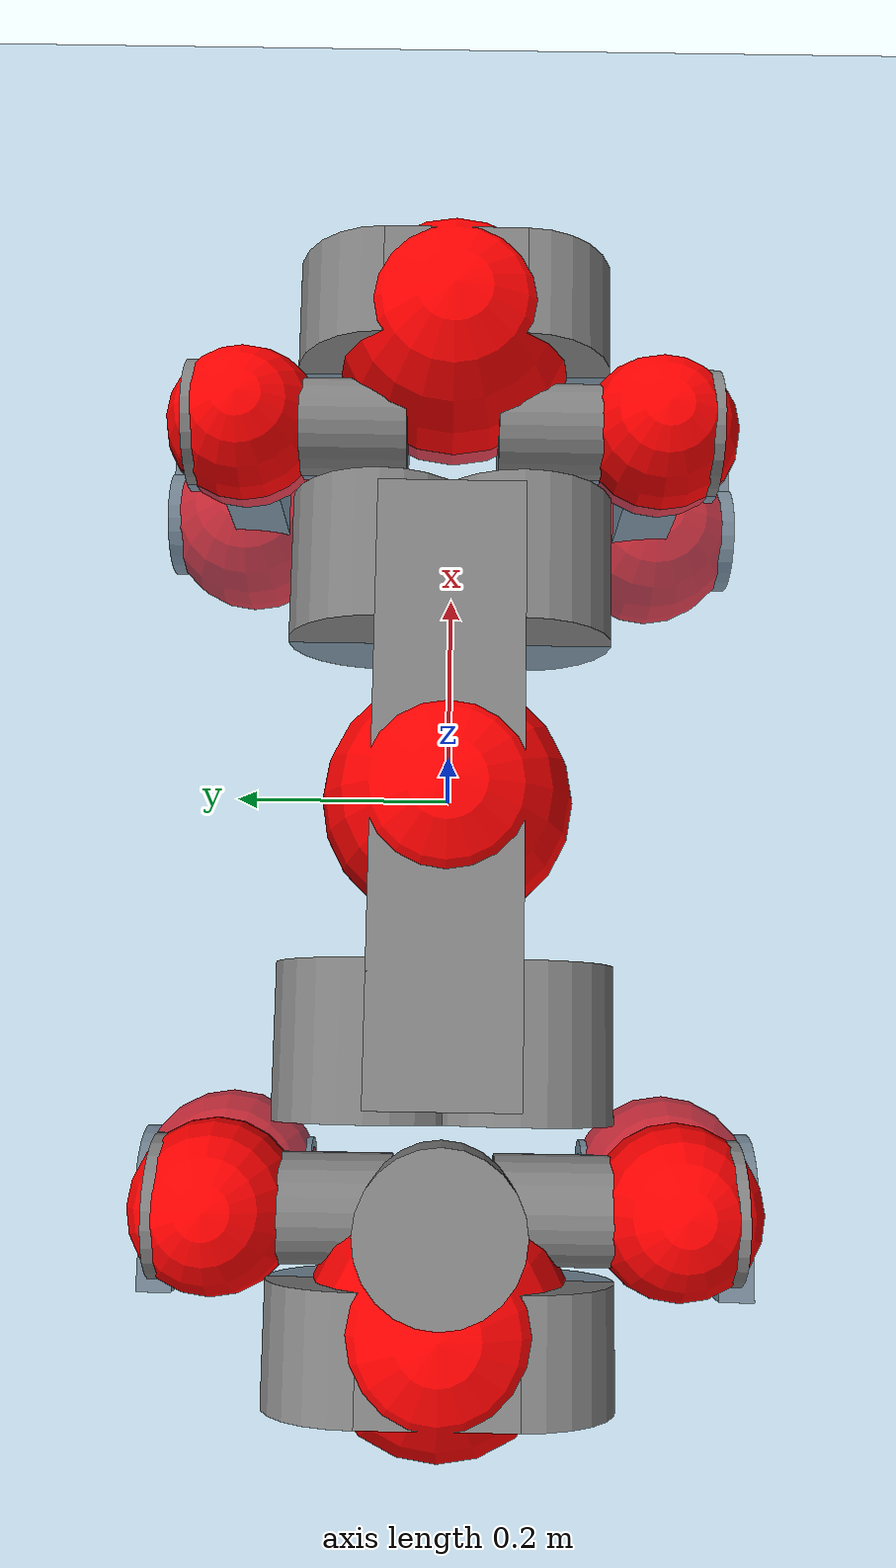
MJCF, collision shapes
<mujoco model="anymal_c">
  <compiler angle="radian" assetdir="assets" balanceinertia="true" inertiafromgeom="false"/>

  <option timestep="0.005" density="1.2" viscosity="2e-05"/>

  <size nkey="1"/>

  <visual>
    <quality shadowsize="8192"/>
    <map shadowclip="0.5"/>
  </visual>

  <default>
    <default class="/">
      <material specular="0" shininess="0.25"/>
      <geom contype="0" conaffinity="0" group="1" solref="-1000 -80"/>
      <site size="0.01 0.005 0.005" group="5"/>
      <general forcelimited="true" forcerange="-80 80" biastype="affine" gainprm="80" biasprm="0 -80 -2"/>
      <default class="anymal_c">
        <joint armature="0.01" damping="0.01" frictionloss="0.1"/>
        <default class="visual">
          <geom type="mesh" group="2"/>
          <default class="visual_zflip"/>
        </default>
        <default class="collision">
          <geom type="cylinder" group="3"/>
          <default class="foot">
            <geom size="0.03 0 0" type="sphere" condim="6" priority="1" friction="0.8 0.02 0.01" solimp="0.015 1 0.03"/>
          </default>
        </default>
      </default>
      <default class="reward_collision_sphere">
        <geom group="5" rgba="1 0 0 1"/>
      </default>
    </default>
  </default>

  <asset>
    <texture type="skybox" colorspace="auto" name="//unnamed_texture_0" builtin="gradient" rgb1="0.95 0.95 0.95" rgb2="0.95 0.95 0.95" width="100" height="600"/>
    <texture type="2d" colorspace="auto" name="texplane" builtin="checker" rgb1="0.345 0.575 0.748" rgb2="0.345 0.575 0.748" markrgb="1 1 1" width="512" height="512"/>
    <texture type="2d" colorspace="linear" name="base" file="base.png"/>
    <texture type="2d" colorspace="linear" name="top_shell" file="top_shell.png"/>
    <texture type="2d" colorspace="linear" name="bottom_shell" file="bottom_shell.png"/>
    <texture type="2d" colorspace="linear" name="remote" file="remote.png"/>
    <texture type="2d" colorspace="linear" name="hatch" file="hatch.png"/>
    <texture type="2d" colorspace="linear" name="handle" file="handle.png"/>
    <texture type="2d" colorspace="linear" name="face" file="face.png"/>
    <texture type="2d" colorspace="linear" name="battery" file="battery.png"/>
    <texture type="2d" colorspace="linear" name="lidar_cage" file="lidar_cage.png"/>
    <texture type="2d" colorspace="linear" name="depth_camera" file="depth_camera.png"/>
    <texture type="2d" colorspace="linear" name="wide_angle_camera" file="wide_angle_camera.png"/>
    <texture type="2d" colorspace="linear" name="lidar" file="lidar.png"/>
    <texture type="2d" colorspace="linear" name="drive" file="drive.png"/>
    <texture type="2d" colorspace="linear" name="hip_l" file="hip_l.png"/>
    <texture type="2d" colorspace="linear" name="shank_l" file="shank_l.png"/>
    <texture type="2d" colorspace="linear" name="foot" file="foot.png"/>
    <texture type="2d" colorspace="linear" name="thigh" file="thigh.png"/>
    <texture type="2d" colorspace="linear" name="shank_r" file="shank_r.png"/>
    <texture type="2d" colorspace="linear" name="hip_r" file="hip_r.png"/>
    <material name="MatPlane" class="/" texture="texplane" texuniform="true" texrepeat="2 2" specular="0.9" shininess="0.5"/>
    <material name="black_plastic" class="/" rgba="0.007 0.007 0.007 1"/>
    <material name="green" class="/" rgba="0.052 0.178 0.033 1"/>
    <material name="red" class="/" rgba="0.178 0.006 0.005 1"/>
    <material name="yellow" class="/" rgba="0.178 0.119 0.006 1"/>
    <material name="lwl" class="/" rgba="0.8 0.8 0.8 1"/>
    <material name="base" class="/" texture="base"/>
    <material name="top_shell" class="/" texture="top_shell"/>
    <material name="bottom_shell" class="/" texture="bottom_shell"/>
    <material name="hip_l" class="/" texture="hip_l"/>
    <material name="thigh" class="/" texture="thigh"/>
    <material name="shank_l" class="/" texture="shank_l"/>
    <material name="foot" class="/" texture="foot"/>
    <material name="hip_r" class="/" texture="hip_r"/>
    <material name="shank" class="/" texture="shank_r"/>
    <material name="hatch" class="/" texture="hatch"/>
    <material name="remote" class="/" texture="remote"/>
    <material name="handle" class="/" texture="handle"/>
    <material name="face" class="/" texture="face"/>
    <material name="depth_camera" class="/" texture="depth_camera"/>
    <material name="wide_angle_camera" class="/" texture="wide_angle_camera"/>
    <material name="battery" class="/" texture="battery"/>
    <material name="lidar_cage" class="/" texture="lidar_cage"/>
    <material name="lidar" class="/" texture="lidar"/>
    <material name="drive" class="/" texture="drive"/>
    <mesh name="base_0" class="/" file="base_0.obj"/>
    <mesh name="base_1" class="/" file="base_1.obj"/>
    <mesh name="base_2" class="/" file="base_2.obj"/>
    <mesh name="base_3" class="/" file="base_3.obj"/>
    <mesh name="base_4" class="/" file="base_4.obj"/>
    <mesh name="base_5" class="/" file="base_5.obj"/>
    <mesh name="top_shell" class="/" file="top_shell.obj"/>
    <mesh name="bottom_shell" class="/" file="bottom_shell.obj"/>
    <mesh name="remote" class="/" file="remote.obj"/>
    <mesh name="handle" class="/" file="handle.obj"/>
    <mesh name="face" class="/" file="face.obj"/>
    <mesh name="wide_angle_camera" class="/" file="wide_angle_camera.obj"/>
    <mesh name="depth_camera" class="/" file="depth_camera.obj"/>
    <mesh name="battery" class="/" file="battery.obj"/>
    <mesh name="lidar_cage" class="/" file="lidar_cage.obj"/>
    <mesh name="lidar" class="/" file="lidar.obj"/>
    <mesh name="drive" class="/" file="drive.obj"/>
    <mesh name="hip_l" class="/" file="hip_l.obj"/>
    <mesh name="thigh" class="/" file="thigh.obj"/>
    <mesh name="shank_l" class="/" file="shank_l.obj"/>
    <mesh name="foot" class="/" file="foot.obj"/>
    <mesh name="hip_r" class="/" file="hip_r.obj"/>
    <mesh name="hatch" class="/" file="hatch.obj"/>
    <mesh name="shank_r" class="/" file="shank_r.obj"/>
  </asset>

  <worldbody>
    <geom name="floor" class="/" size="100 100 0.125" type="plane" group="0" material="MatPlane"/>
    <light name="toplight_shadow" class="/" pos="0 0 5" dir="0.0990148 0.0990148 -0.990148" type="directional" ambient="0.04 0.04 0.04" diffuse="0.55 0.55 0.55" specular="0.12 0.12 0.12"/>
    <light name="toplight_fill" class="/" pos="0 0 5" dir="0.0990148 0.0990148 -0.990148" type="directional" castshadow="false" ambient="0.04 0.04 0.04" diffuse="0.3 0.3 0.3" specular="0.08 0.08 0.08"/>
    <body name="trunk" childclass="anymal_c" pos="0.00152631 0.000847432 -0.00219755" quat="0.999999 0.000802388 0.000698364 -0.00018538">
      <inertial pos="0.00064284 0.00165757 0.046763" quat="0.500395 0.497924 0.499503 0.502169" mass="18.5113" diaginertia="0.810203 0.542839 0.178658"/>
      <joint name="//unnamed_joint_0" type="free" armature="0" damping="0" frictionloss="0"/>
      <geom name="//unnamed_geom_1" class="visual" material="green" mesh="base_0"/>
      <geom name="//unnamed_geom_2" class="visual" material="yellow" mesh="base_1"/>
      <geom name="//unnamed_geom_3" class="visual" material="red" mesh="base_2"/>
      <geom name="//unnamed_geom_4" class="visual" material="black_plastic" mesh="base_3"/>
      <geom name="//unnamed_geom_5" class="visual" material="lwl" mesh="base_4"/>
      <geom name="//unnamed_geom_6" class="visual" material="base" mesh="base_5"/>
      <geom name="trunk_1" class="collision" size="0.287998 0.0695169 0.0893788" type="box"/>
      <geom name="trunk_2" class="collision" size="0.0893788 0.0719996" pos="0.227937 0.0680914 0" quat="0.707107 0 0.707107 0"/>
      <geom name="trunk_3" class="collision" size="0.0893788 0.0719996" pos="-0.227937 0.0680914 0" quat="0.707107 0 0.707107 0"/>
      <geom name="trunk_4" class="collision" size="0.0893788 0.0719996" pos="0.227937 -0.0680914 0" quat="0.707107 0 0.707107 0"/>
      <geom name="trunk_5" class="collision" size="0.0893788 0.0719996" pos="-0.227937 -0.0680914 0" quat="0.707107 0 0.707107 0"/>
      <geom name="//unnamed_geom_12" class="visual" material="top_shell" mesh="top_shell"/>
      <geom name="//unnamed_geom_13" class="visual" material="bottom_shell" mesh="bottom_shell"/>
      <geom name="//unnamed_geom_14" class="visual" material="remote" mesh="remote"/>
      <geom name="//unnamed_geom_15" class="visual" material="handle" mesh="handle"/>
      <geom name="//unnamed_geom_16" class="visual" pos="0.434391 0 0" quat="1 0 0 0" material="face" mesh="face"/>
      <geom name="trunk_6" class="collision" size="0.0546204 0.0695169 0.0893788" pos="0.49203 0 0" type="box"/>
      <geom name="//unnamed_geom_18" class="collision" size="0.0893788 0.0546204" pos="0.49203 0.0680914 0" quat="0.707107 0 0.707107 0"/>
      <geom name="//unnamed_geom_19" class="collision" size="0.0893788 0.0546204" pos="0.49203 -0.0680914 0" quat="0.707107 0 0.707107 0"/>
      <geom name="//unnamed_geom_20" class="visual" pos="0.4838 0 -0.0273108" quat="0.965926 0 0.258819 0" material="depth_camera" mesh="depth_camera"/>
      <geom name="//unnamed_geom_21" class="visual" pos="0.537618 0 0.0143498" material="wide_angle_camera" mesh="wide_angle_camera"/>
      <geom name="//unnamed_geom_22" class="visual_zflip" pos="-0.434391 0 0" quat="0 0 0 1" material="face" mesh="face"/>
      <geom name="trunk_7" class="collision" size="0.0546204 0.0695169 0.0893788" pos="-0.49203 0 0" quat="0 0 0 1" type="box"/>
      <geom name="//unnamed_geom_24" class="collision" size="0.0893788 0.0546204" pos="-0.49203 -0.0680914 0" quat="0 -0.707107 0 0.707107"/>
      <geom name="//unnamed_geom_25" class="collision" size="0.0893788 0.0546204" pos="-0.49203 0.0680914 0" quat="0 -0.707107 0 0.707107"/>
      <geom name="//unnamed_geom_26" class="visual" pos="-0.4838 0 -0.0273108" quat="0 -0.258819 0 0.965926" material="depth_camera" mesh="depth_camera"/>
      <geom name="//unnamed_geom_27" class="visual_zflip" pos="-0.537618 0 0.0143498" quat="0 0 0 1" material="wide_angle_camera" mesh="wide_angle_camera"/>
      <geom name="//unnamed_geom_28" class="visual" material="battery" mesh="battery"/>
      <geom name="//unnamed_geom_29" class="visual" pos="0 0.0733841 0.0285261" quat="0.683013 -0.183013 0.183013 0.683013" material="depth_camera" mesh="depth_camera"/>
      <geom name="//unnamed_geom_30" class="visual" pos="0 -0.0733841 0.0285261" quat="0.683013 0.183013 0.183013 -0.683013" material="depth_camera" mesh="depth_camera"/>
      <geom name="//unnamed_geom_31" class="visual" pos="-0.381468 0 0.0704551" quat="1 0 0 0" material="lidar_cage" mesh="lidar_cage"/>
      <geom name="trunk_8" class="collision" size="0.0695169 0.0595859" pos="-0.381468 0 0.127969"/>
      <geom name="//unnamed_geom_33" class="visual" pos="-0.381468 -2.95649e-05 0.136309" quat="0.707107 0 0 -0.707107" material="lidar" mesh="lidar"/>
      <geom name="//unnamed_geom_34" class="visual" pos="0.314292 0.101159 2.443e-10" quat="0.258819 0.965926 0 0" material="drive" mesh="drive"/>
      <geom name="//unnamed_geom_35" class="visual" pos="0.314292 -0.101159 -2.443e-10" quat="0.258819 -0.965926 0 0" material="drive" mesh="drive"/>
      <geom name="//unnamed_geom_36" class="visual" pos="-0.314292 0.101159 -2.443e-10" quat="0 0 0.965926 -0.258819" material="drive" mesh="drive"/>
      <geom name="//unnamed_geom_37" class="visual" pos="-0.314292 -0.101159 2.443e-10" quat="0 0 -0.965926 -0.258819" material="drive" mesh="drive"/>
      <geom name="//unnamed_geom_38" class="visual" pos="0.121567 0 0.0699758" quat="1 0 0 0" material="hatch" mesh="hatch"/>
      <geom name="//unnamed_geom_39" class="reward_collision_sphere" size="0.119172"/>
      <geom name="//unnamed_geom_40" class="reward_collision_sphere" size="0.119172" pos="0.471594 0 0"/>
      <geom name="//unnamed_geom_41" class="reward_collision_sphere" size="0.119172" pos="-0.471594 0 0"/>
      <site name="imu" pos="0.265568 0.0208186 0.0559528" size="0.00993098"/>
      <camera name="track" pos="0 -1.94547 0" quat="0.707107 0.707107 0 0" mode="trackcom"/>
      <camera name="ego_camera" pos="0.471594 0 -0.0383429" quat="-0.5 -0.5 0.5 0.5"/>
      <body name="LF_HIP" pos="0.314856 0.101738 0.000925144" quat="0.258779 0.965936 -9.33937e-05 -0.00101091">
        <inertial pos="0.0593795 -0.0173659 -0.00674237" quat="-0.129316 0.706282 -0.134318 0.682936" mass="2.64098" diaginertia="0.00751885 0.00440078 0.00266957"/>
        <joint name="LF_HAA" pos="0 0 0" axis="0.999955 -0.00922909 0.00236924" range="-0.684109 0.510253" armature="0.00994834" damping="0.02224" frictionloss="0.0984345"/>
        <geom name="//unnamed_geom_42" class="visual" pos="0 1.43711e-05 -2.36044e-06" quat="0.258819 -0.965926 0 0" material="hip_l" mesh="hip_l"/>
        <geom name="//unnamed_geom_43" class="visual" pos="0.0627745 -0.0750688 -0.0432362" quat="0.183013 -0.683013 0.683013 0.183013" material="drive" mesh="drive"/>
        <geom name="//unnamed_geom_44" class="collision" size="0.0496549 0.0695169" pos="0.0627745 -0.0116337 -0.00661894" quat="-0.353553 -0.612372 0.612372 -0.353553"/>
        <body name="LF_THIGH" pos="0.0655958 -0.0715115 -0.03719" quat="0.182537 -0.683061 0.682769 0.184212">
          <inertial pos="0.0353771 -0.00269051 -0.237742" quat="0.993135 -0.0044481 -0.0809792 0.0842991" mass="2.92843" diaginertia="0.0379436 0.024834 0.00332016"/>
          <joint name="LF_HFE" pos="0 0 0" axis="0.999991 -0.000541501 0.00418295" range="-3.10913 3.14307" armature="0.00913727" damping="0.0141175" frictionloss="0.0933037"/>
          <geom name="//unnamed_geom_45" class="visual" pos="0.00149724 2.3593e-06 0" quat="0.707107 0 0 -0.707107" material="thigh" mesh="thigh"/>
          <geom name="//unnamed_geom_46" class="collision" size="0.0645514 0.0397239" pos="0.0419195 0 0" quat="0.5 0.5 -0.5 -0.5"/>
          <geom name="//unnamed_geom_47" class="collision" size="0.0372412 0.0297929 0.140339" pos="0.0314396 0 -0.13546" quat="0.707107 0 0 -0.707107" type="box"/>
          <geom name="//unnamed_geom_48" class="visual" pos="0.105113 0 -0.273193" quat="1 0 0 0" material="drive" mesh="drive"/>
          <geom name="//unnamed_geom_49" class="collision" size="0.0496549 0.0695169" pos="0.031754 0 -0.273193" quat="0.707107 0 0.707107 0"/>
          <geom name="//unnamed_geom_50" class="reward_collision_sphere" size="0.0794479" pos="0.0261997 0 0"/>
          <body name="LF_SHANK" pos="0.104491 -0.00257227 -0.273051" quat="0.999999 -0.000759546 -0.000433579 -0.0011749">
            <inertial pos="0.00303983 -0.0600369 -0.0745292" quat="0.992653 -0.119334 -0.00505333 -0.0193263" mass="0.575279" diaginertia="0.0126258 0.00846535 0.000929519"/>
            <joint name="LF_KFE" pos="0 0 0" axis="0.999968 0.002881 -0.0074391" stiffness="0.00367546" range="-3.18477 3.12716" armature="0.0110307" damping="0" frictionloss="0.111462"/>
            <geom name="//unnamed_geom_51" class="visual" pos="0.000488218 0.0026032 0" quat="0.707107 0 0 -0.707107" material="shank_l" mesh="shank_l"/>
            <geom name="LF_kfe_act" class="collision" size="0.0595859 0.019862" pos="0.0209598 0 0" quat="0.5 0.5 -0.5 -0.5"/>
            <geom name="//unnamed_geom_53" class="collision" size="0.0571022 0.0335171 0.0188689" pos="0.0209598 -0.0559313 0" quat="0.5 0.5 -0.5 -0.5" type="box"/>
            <geom name="//unnamed_geom_54" class="visual" pos="0.0136761 -0.0847131 -0.323969" quat="0.382683 0 0 -0.92388" material="foot" mesh="foot"/>
            <geom name="LF_calf" class="collision" size="0.0173792 0.140277" pos="0.0136762 -0.085552 -0.161984" quat="0.707107 0 0 -0.707107"/>
            <geom name="LF_foot" class="foot" size="0.0296839" pos="0.0136762 -0.085552 -0.302401" quat="0.707107 0 0 -0.707107"/>
            <geom name="//unnamed_geom_57" class="reward_collision_sphere" size="0.0993098" pos="-0.0523994 0 0"/>
            <geom name="//unnamed_geom_58" class="reward_collision_sphere" size="0.0496549" pos="0.0136762 -0.085552 -0.302401"/>
            <site name="LF_foot" class="foot" pos="0.0136762 -0.085552 -0.302401" quat="0.707107 0 0 -0.707107" size="0.00993098"/>
          </body>
        </body>
      </body>
      <body name="RF_HIP" pos="0.313911 -0.100894 -0.00193138" quat="0.258573 -0.96599 0.00125615 0.000815934">
        <inertial pos="0.0619932 0.0128068 -0.00799024" quat="0.139837 0.671686 0.136837 0.714534" mass="2.70122" diaginertia="0.00691313 0.00413882 0.00248633"/>
        <joint name="RF_HAA" pos="0 0 0" axis="0.999946 0.00117471 0.0102924" range="-0.472114 0.719142" armature="0.0102471" damping="0.00550465" frictionloss="0.0864315"/>
        <geom name="//unnamed_geom_59" class="visual" pos="0 -1.4371e-05 -2.36043e-06" quat="0.258819 0.965926 0 0" material="hip_r" mesh="hip_r"/>
        <geom name="//unnamed_geom_60" class="visual" pos="0.0627745 0.0750688 -0.0432362" quat="0.183013 0.683013 0.683013 -0.183013" material="drive" mesh="drive"/>
        <geom name="//unnamed_geom_61" class="collision" size="0.0496549 0.0695169" pos="0.0627745 0.0116337 -0.00661894" quat="-0.353553 0.612372 0.612372 0.353553"/>
        <body name="RF_THIGH" pos="0.0632081 0.0688104 -0.0396845" quat="0.182657 0.683396 0.682848 -0.182552">
          <inertial pos="0.0350196 -0.00283995 -0.234174" quat="0.991347 -0.013697 -0.089718 0.0948425" mass="3.02235" diaginertia="0.0376231 0.024974 0.00339883"/>
          <joint name="RF_HFE" pos="0 0 0" axis="0.999993 0.000433992 0.00371481" range="-3.12228 3.19422" armature="0.00988357" damping="0.0121229" frictionloss="0.109274"/>
          <geom name="//unnamed_geom_62" class="visual" pos="0.00149724 2.3593e-06 0" quat="0.707107 0 0 -0.707107" material="thigh" mesh="thigh"/>
          <geom name="//unnamed_geom_63" class="collision" size="0.0645514 0.0397239" pos="0.0419195 0 0" quat="0.5 0.5 0.5 0.5"/>
          <geom name="//unnamed_geom_64" class="collision" size="0.0372412 0.0297929 0.140339" pos="0.0314396 0 -0.13546" quat="0.707107 0 0 0.707107" type="box"/>
          <geom name="//unnamed_geom_65" class="visual" pos="0.105113 0 -0.273193" quat="1 0 0 0" material="drive" mesh="drive"/>
          <geom name="//unnamed_geom_66" class="collision" size="0.0496549 0.0695169" pos="0.031754 0 -0.273193" quat="0.707107 0 0.707107 0"/>
          <geom name="//unnamed_geom_67" class="reward_collision_sphere" size="0.0794479" pos="0.0261997 0 0"/>
          <body name="RF_SHANK" pos="0.104018 -0.00258893 -0.274502" quat="1 -1.43364e-05 -2.73838e-05 -1.65755e-05">
            <inertial pos="0.00549865 0.058885 -0.0766684" quat="0.993685 0.108931 0.00855653 0.0255023" mass="0.580387" diaginertia="0.0129133 0.00804847 0.000875499"/>
            <joint name="RF_KFE" pos="0 0 0" axis="0.999979 -0.00374389 0.00537637" range="-3.16025 3.19349" armature="0.00941943" damping="0.0235119" frictionloss="0.0908286"/>
            <geom name="//unnamed_geom_68" class="visual" pos="0.000488215 -0.0026032 0" quat="0.707107 0 0 0.707107" material="shank" mesh="shank_r"/>
            <geom name="RF_kfe_act" class="collision" size="0.0595859 0.019862" pos="0.0209598 0 0" quat="0.5 0.5 0.5 0.5"/>
            <geom name="//unnamed_geom_70" class="collision" size="0.0571022 0.0335171 0.0188689" pos="0.0209598 0.0559313 0" quat="0.5 0.5 0.5 0.5" type="box"/>
            <geom name="//unnamed_geom_71" class="visual" pos="0.0136764 0.0847131 -0.323969" quat="0.382683 0 0 0.92388" material="foot" mesh="foot"/>
            <geom name="RF_calf" class="collision" size="0.0173792 0.140277" pos="0.0136762 0.085552 -0.161984" quat="0.707107 0 0 0.707107"/>
            <geom name="RF_foot" class="foot" size="0.0253629" pos="0.0136762 0.085552 -0.302401" quat="0.707107 0 0 0.707107"/>
            <geom name="//unnamed_geom_74" class="reward_collision_sphere" size="0.0993098" pos="-0.0523994 0 0"/>
            <geom name="//unnamed_geom_75" class="reward_collision_sphere" size="0.0496549" pos="0.0136762 0.085552 -0.302401"/>
            <site name="RF_foot" class="foot" pos="0.0136762 0.085552 -0.302401" quat="0.707107 0 0 0.707107" size="0.00993098"/>
          </body>
        </body>
      </body>
      <body name="LH_HIP" pos="-0.314384 0.100772 -0.00183126" quat="2.84562e-05 8.21273e-05 0.965923 -0.258829">
        <inertial pos="0.0610699 0.0166506 -0.0108579" quat="0.133808 0.674428 0.129334 0.714503" mass="2.78275" diaginertia="0.00728469 0.00426291 0.00272849"/>
        <joint name="LH_HAA" pos="0 0 0" axis="1 0.000594669 -0.000399995" stiffness="0.00648543" range="-0.474946 0.670825" armature="0.00869248" damping="0.00650956" frictionloss="0.111234"/>
        <geom name="//unnamed_geom_76" class="visual" pos="0 -1.4371e-05 -2.36043e-06" quat="-0.258819 -0.965926 0 0" material="hip_r" mesh="hip_r"/>
        <geom name="//unnamed_geom_77" class="visual" pos="0.0627745 0.0750688 -0.0432362" quat="0.183013 0.683013 0.683013 -0.183013" material="drive" mesh="drive"/>
        <geom name="//unnamed_geom_78" class="collision" size="0.0496549 0.0695169" pos="0.0627745 0.0116337 -0.00661894" quat="-0.353553 0.612372 0.612372 0.353553"/>
        <body name="LH_THIGH" pos="0.0628179 0.0679425 -0.0385285" quat="0.18281 0.683059 0.682971 -0.183197">
          <inertial pos="0.0324101 0.000205496 -0.236009" quat="0.993461 -0.00692806 -0.0780049 0.0830789" mass="3.09428" diaginertia="0.0382295 0.0259061 0.00352164"/>
          <joint name="LH_HFE" pos="0 0 0" axis="0.999931 0.00101625 0.0117447" stiffness="0.00996504" range="-3.15394 3.1213" armature="0.0112528" damping="0" frictionloss="0.100265"/>
          <geom name="//unnamed_geom_79" class="visual" pos="0.00149724 2.3593e-06 0" quat="0.707107 0 0 -0.707107" material="thigh" mesh="thigh"/>
          <geom name="//unnamed_geom_80" class="collision" size="0.0645514 0.0397239" pos="0.0419195 0 0" quat="0.5 0.5 -0.5 -0.5"/>
          <geom name="//unnamed_geom_81" class="collision" size="0.0372412 0.0297929 0.140339" pos="0.0314396 0 -0.13546" quat="0.707107 0 0 -0.707107" type="box"/>
          <geom name="//unnamed_geom_82" class="visual" pos="0.105113 0 -0.273193" quat="1 0 0 0" material="drive" mesh="drive"/>
          <geom name="//unnamed_geom_83" class="collision" size="0.0496549 0.0695169" pos="0.031754 0 -0.273193" quat="0.707107 0 0.707107 0"/>
          <geom name="//unnamed_geom_84" class="reward_collision_sphere" size="0.0794479" pos="0.0261997 0 0"/>
          <body name="LH_SHANK" pos="0.104456 -0.000155676 -0.275111" quat="1 0.00029833 6.13511e-05 -0.000226844">
            <inertial pos="0.00447973 0.0612142 -0.0781215" quat="0.992393 0.11836 -0.011257 0.0319322" mass="0.583918" diaginertia="0.0126074 0.00808822 0.000899031"/>
            <joint name="LH_KFE" pos="0 0 0" axis="0.999946 0.00806542 -0.00657378" range="-3.13872 3.18029" armature="0.0111327" damping="0" frictionloss="0.108576"/>
            <geom name="//unnamed_geom_85" class="visual" pos="0.000488215 -0.0026032 0" quat="-0.707107 0 0 -0.707107" material="shank" mesh="shank_r"/>
            <geom name="LH_kfe_act" class="collision" size="0.0595859 0.019862" pos="0.0209598 0 0" quat="0.5 0.5 -0.5 -0.5"/>
            <geom name="//unnamed_geom_87" class="collision" size="0.0571022 0.0335171 0.0188689" pos="0.0209598 0.0559313 0" quat="0.5 0.5 -0.5 -0.5" type="box"/>
            <geom name="//unnamed_geom_88" class="visual" pos="0.0136764 0.0847131 -0.323969" quat="-0.382683 0 0 -0.92388" material="foot" mesh="foot"/>
            <geom name="LH_calf" class="collision" size="0.0173792 0.140277" pos="0.0136762 0.085552 -0.161984" quat="0.707107 0 0 -0.707107"/>
            <geom name="LH_foot" class="foot" size="0.0300086" pos="0.0136762 0.085552 -0.302401" quat="0.707107 0 0 -0.707107"/>
            <geom name="//unnamed_geom_91" class="reward_collision_sphere" size="0.0993098" pos="-0.0523994 0 0"/>
            <geom name="//unnamed_geom_92" class="reward_collision_sphere" size="0.0496549" pos="0.0136762 0.085552 -0.302401"/>
            <site name="LH_foot" class="foot" pos="0.0136762 0.085552 -0.302401" quat="0.707107 0 0 -0.707107" size="0.00993098"/>
          </body>
        </body>
      </body>
      <body name="RH_HIP" pos="-0.313265 -0.103694 -0.000536623" quat="-0.000452238 0.000249805 -0.966137 -0.25803">
        <inertial pos="0.0612093 -0.0121686 -0.00999245" quat="-0.13278 0.71693 -0.141002 0.669701" mass="2.72298" diaginertia="0.00735722 0.00428323 0.00269167"/>
        <joint name="RH_HAA" pos="0 0 0" axis="0.999961 0.00628099 -0.00628597" stiffness="0.0071938" range="-0.699728 0.476269" armature="0.00874514" damping="0.0150736" frictionloss="0.0964985"/>
        <geom name="//unnamed_geom_93" class="visual" pos="0 1.43711e-05 -2.36044e-06" quat="-0.258819 0.965926 0 0" material="hip_l" mesh="hip_l"/>
        <geom name="//unnamed_geom_94" class="visual" pos="0.0627745 -0.0750688 -0.0432362" quat="-0.183013 0.683013 -0.683013 -0.183013" material="drive" mesh="drive"/>
        <geom name="//unnamed_geom_95" class="collision" size="0.0496549 0.0695169" pos="0.0627745 -0.0116337 -0.00661894" quat="0.353553 0.612372 -0.612372 0.353553"/>
        <body name="RH_THIGH" pos="0.0624893 -0.0725586 -0.0422168" quat="-0.18296 0.683088 -0.68295 -0.183018">
          <inertial pos="0.0335829 0.000317462 -0.235459" quat="0.992981 -0.00718349 -0.0810521 0.0858309" mass="2.90912" diaginertia="0.0385851 0.0269274 0.00338866"/>
          <joint name="RH_HFE" pos="0 0 0" axis="1 0.000197259 0.000282303" stiffness="0.00496721" range="-3.14348 3.19483" armature="0.0104505" damping="0.00800671" frictionloss="0.0967182"/>
          <geom name="//unnamed_geom_96" class="visual" pos="0.00149724 2.3593e-06 0" quat="0.707107 0 0 -0.707107" material="thigh" mesh="thigh"/>
          <geom name="//unnamed_geom_97" class="collision" size="0.0645514 0.0397239" pos="0.0419195 0 0" quat="0.5 0.5 0.5 0.5"/>
          <geom name="//unnamed_geom_98" class="collision" size="0.0372412 0.0297929 0.140339" pos="0.0314396 0 -0.13546" quat="0.707107 0 0 0.707107" type="box"/>
          <geom name="//unnamed_geom_99" class="visual" pos="0.105113 0 -0.273193" quat="1 0 0 0" material="drive" mesh="drive"/>
          <geom name="//unnamed_geom_100" class="collision" size="0.0496549 0.0695169" pos="0.031754 0 -0.273193" quat="0.707107 0 0.707107 0"/>
          <geom name="//unnamed_geom_101" class="reward_collision_sphere" size="0.0794479" pos="0.0261997 0 0"/>
          <body name="RH_SHANK" pos="0.105768 -0.00121454 -0.269675" quat="1 -3.43387e-06 3.03126e-06 1.08388e-05">
            <inertial pos="0.00301015 -0.0605099 -0.0774317" quat="0.991584 -0.127342 0.00358076 -0.0230519" mass="0.583664" diaginertia="0.0131133 0.00807327 0.000938033"/>
            <joint name="RH_KFE" pos="0 0 0" axis="0.999916 0.0123437 -0.00405141" range="-3.13511 3.12493" armature="0.00968528" damping="0.0209124" frictionloss="0.0974689"/>
            <geom name="//unnamed_geom_102" class="visual" pos="0.000488218 0.0026032 0" quat="0.707107 0 0 -0.707107" material="shank_l" mesh="shank_l"/>
            <geom name="RH_kfe_act" class="collision" size="0.0595859 0.019862" pos="0.0209598 0 0" quat="0.5 0.5 0.5 0.5"/>
            <geom name="//unnamed_geom_104" class="collision" size="0.0571022 0.0335171 0.0188689" pos="0.0209598 -0.0559313 0" quat="0.5 0.5 0.5 0.5" type="box"/>
            <geom name="//unnamed_geom_105" class="visual" pos="0.0136761 -0.0847131 -0.323969" quat="0.382683 0 0 -0.92388" material="foot" mesh="foot"/>
            <geom name="RH_calf" class="collision" size="0.0173792 0.140277" pos="0.0136762 -0.085552 -0.161984" quat="0.707107 0 0 0.707107"/>
            <geom name="RH_foot" class="foot" size="0.0276684" pos="0.0136762 -0.085552 -0.302401" quat="0.707107 0 0 0.707107"/>
            <geom name="//unnamed_geom_108" class="reward_collision_sphere" size="0.0993098" pos="-0.0523994 0 0"/>
            <geom name="//unnamed_geom_109" class="reward_collision_sphere" size="0.0496549" pos="0.0136762 -0.085552 -0.302401"/>
            <site name="RH_foot" class="foot" pos="0.0136762 -0.085552 -0.302401" quat="0.707107 0 0 0.707107" size="0.00993098"/>
          </body>
        </body>
      </body>
    </body>
  </worldbody>

  <contact>
    <pair class="/" geom1="floor" geom2="LF_foot" name="//unnamed_contact_0"/>
    <pair class="/" geom1="floor" geom2="RF_foot" name="//unnamed_contact_1"/>
    <pair class="/" geom1="floor" geom2="LH_foot" name="//unnamed_contact_2"/>
    <pair class="/" geom1="floor" geom2="RH_foot" name="//unnamed_contact_3"/>
  </contact>

  <actuator>
    <general name="LF_HAA" class="/" joint="LF_HAA" forcerange="-79.7092 79.7092" gainprm="83.703" biasprm="0 -83.703 -1.96816"/>
    <general name="LF_HFE" class="/" joint="LF_HFE" forcerange="-72.0751 72.0751" gainprm="83.703" biasprm="0 -83.703 -1.96816"/>
    <general name="LF_KFE" class="/" joint="LF_KFE" forcerange="-82.3502 82.3502" gainprm="83.703" biasprm="0 -83.703 -1.96816"/>
    <general name="RF_HAA" class="/" joint="RF_HAA" forcerange="-79.417 79.417" gainprm="83.703" biasprm="0 -83.703 -1.96816"/>
    <general name="RF_HFE" class="/" joint="RF_HFE" forcerange="-89.3665 89.3665" gainprm="83.703" biasprm="0 -83.703 -1.96816"/>
    <general name="RF_KFE" class="/" joint="RF_KFE" forcerange="-79.4272 79.4272" gainprm="83.703" biasprm="0 -83.703 -1.96816"/>
    <general name="LH_HAA" class="/" joint="LH_HAA" forcerange="-85.493 85.493" gainprm="83.703" biasprm="0 -83.703 -1.96816"/>
    <general name="LH_HFE" class="/" joint="LH_HFE" forcerange="-73.7112 73.7112" gainprm="83.703" biasprm="0 -83.703 -1.96816"/>
    <general name="LH_KFE" class="/" joint="LH_KFE" forcerange="-73.7814 73.7814" gainprm="83.703" biasprm="0 -83.703 -1.96816"/>
    <general name="RH_HAA" class="/" joint="RH_HAA" forcerange="-71.9333 71.9333" gainprm="83.703" biasprm="0 -83.703 -1.96816"/>
    <general name="RH_HFE" class="/" joint="RH_HFE" forcerange="-86.1436 86.1436" gainprm="83.703" biasprm="0 -83.703 -1.96816"/>
    <general name="RH_KFE" class="/" joint="RH_KFE" forcerange="-76.8877 76.8877" gainprm="83.703" biasprm="0 -83.703 -1.96816"/>
  </actuator>

  <sensor>
    <gyro site="imu" name="imu_angular_velocity"/>
    <velocimeter site="imu" name="imu_linear_velocity"/>
    <framelinvel objtype="site" objname="LF_foot" name="LF_foot_global_linear_velocity"/>
    <framelinvel objtype="site" objname="RF_foot" name="RF_foot_global_linear_velocity"/>
    <framelinvel objtype="site" objname="LH_foot" name="LH_foot_global_linear_velocity"/>
    <framelinvel objtype="site" objname="RH_foot" name="RH_foot_global_linear_velocity"/>
  </sensor>

  <keyframe>
    <key name="home" qpos="0 0 0.55 1 0 0 0 0 0.4 -0.8 0 -0.4 0.8 0 -0.4 0.8 0 0.4 -0.8"/>
  </keyframe>
</mujoco>
